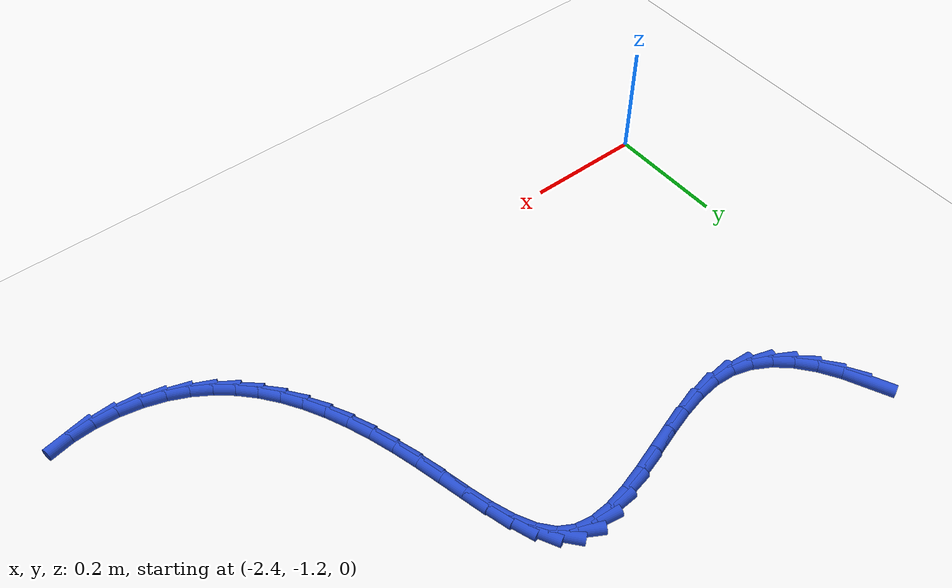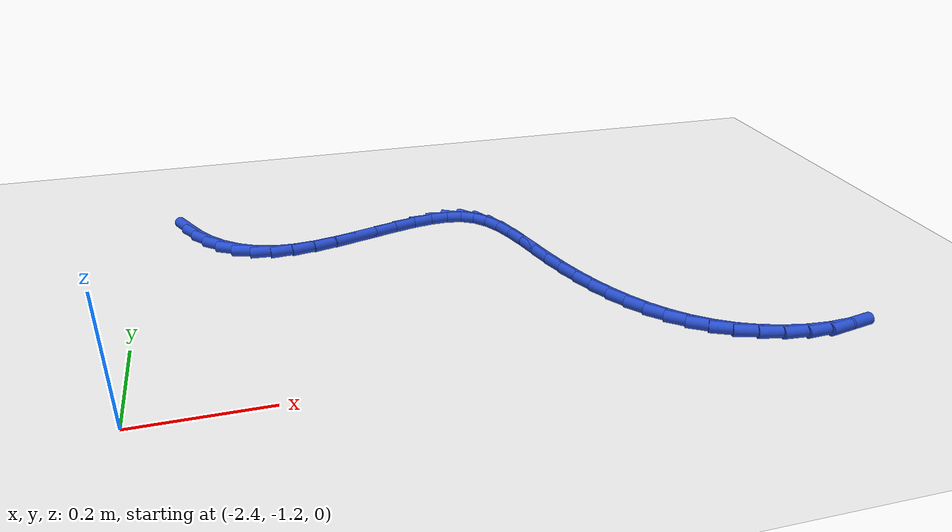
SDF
<sdf version="1.6">
 <world name="default">
  <model name="ground_plane">
   <static>1</static>
   <link name="link">
    <collision name="collision">
     <geometry><plane><normal>0 0 1</normal><size>100 100</size></plane></geometry>
     <surface><friction><ode><mu>100</mu><mu2>50</mu2></ode></friction></surface>
    </collision>
    <visual name="visual">
     <cast_shadows>0</cast_shadows>
     <geometry><plane><normal>0 0 1</normal><size>100 100</size></plane></geometry>
     <material>
      <script><uri>file://media/materials/scripts/gazebo.material</uri><name>Gazebo/WhiteGlow</name></script>
     </material>
    </visual>
   </link>
  </model>
  <model name="line">
   <link name="link_135">
    <pose>-2.317628818349024 -0.5887638545938548 0.01 0 1.57 -1.1273412968581804</pose>
    <collision name="collision">
     <geometry><cylinder><radius>0.01</radius><length>0.08</length></cylinder></geometry>
    </collision>
    <visual name="visual">
     <material>
      <script><name>Gazebo/Blue</name><uri>file://media/materials/scripts/gazebo.material</uri></script>
     </material>
     <geometry><cylinder><radius>0.01</radius><length>0.08</length></cylinder></geometry>
    </visual>
   </link>
   <link name="link_136">
    <pose>-2.3008463630789313 -0.6240947291702771 0.01 0 1.57 -1.0158100747810805</pose>
    <collision name="collision">
     <geometry><cylinder><radius>0.01</radius><length>0.08</length></cylinder></geometry>
    </collision>
    <visual name="visual">
     <material>
      <script><name>Gazebo/Blue</name><uri>file://media/materials/scripts/gazebo.material</uri></script>
     </material>
     <geometry><cylinder><radius>0.01</radius><length>0.08</length></cylinder></geometry>
    </visual>
   </link>
   <link name="link_137">
    <pose>-2.2811849344449042 -0.6558073817940376 0.01 0 1.57 -0.8809743168421253</pose>
    <collision name="collision">
     <geometry><cylinder><radius>0.01</radius><length>0.08</length></cylinder></geometry>
    </collision>
    <visual name="visual">
     <material>
      <script><name>Gazebo/Blue</name><uri>file://media/materials/scripts/gazebo.material</uri></script>
     </material>
     <geometry><cylinder><radius>0.01</radius><length>0.08</length></cylinder></geometry>
    </visual>
   </link>
   <link name="link_138">
    <pose>-2.258617061796877 -0.6831611549541381 0.01 0 1.57 -0.717499734295027</pose>
    <collision name="collision">
     <geometry><cylinder><radius>0.01</radius><length>0.08</length></cylinder></geometry>
    </collision>
    <visual name="visual">
     <material>
      <script><name>Gazebo/Blue</name><uri>file://media/materials/scripts/gazebo.material</uri></script>
     </material>
     <geometry><cylinder><radius>0.01</radius><length>0.08</length></cylinder></geometry>
    </visual>
   </link>
   <link name="link_139">
    <pose>-2.2331152744847835 -0.7054153911395804 0.01 0 1.57 -0.5230932730868396</pose>
    <collision name="collision">
     <geometry><cylinder><radius>0.01</radius><length>0.08</length></cylinder></geometry>
    </collision>
    <visual name="visual">
     <material>
      <script><name>Gazebo/Blue</name><uri>file://media/materials/scripts/gazebo.material</uri></script>
     </material>
     <geometry><cylinder><radius>0.01</radius><length>0.08</length></cylinder></geometry>
    </visual>
   </link>
   <link name="link_140">
    <pose>-2.2046521018585534 -0.7218294328393651 0.01 0 1.57 -0.3030132038240705</pose>
    <collision name="collision">
     <geometry><cylinder><radius>0.01</radius><length>0.08</length></cylinder></geometry>
    </collision>
    <visual name="visual">
     <material>
      <script><name>Gazebo/Blue</name><uri>file://media/materials/scripts/gazebo.material</uri></script>
     </material>
     <geometry><cylinder><radius>0.01</radius><length>0.08</length></cylinder></geometry>
    </visual>
   </link>
   <link name="link_141">
    <pose>-2.1732000732681236 -0.7316626225424931 0.01 0 1.57 -0.0782711757957893</pose>
    <collision name="collision">
     <geometry><cylinder><radius>0.01</radius><length>0.08</length></cylinder></geometry>
    </collision>
    <visual name="visual">
     <material>
      <script><name>Gazebo/Blue</name><uri>file://media/materials/scripts/gazebo.material</uri></script>
     </material>
     <geometry><cylinder><radius>0.01</radius><length>0.08</length></cylinder></geometry>
    </visual>
   </link>
   <link name="link_142">
    <pose>-2.13879540124824 -0.734361029412185 0.01 0 1.57 0.09517036867485135</pose>
    <collision name="collision">
     <geometry><cylinder><radius>0.01</radius><length>0.08</length></cylinder></geometry>
    </collision>
    <visual name="visual">
     <material>
      <script><name>Gazebo/Blue</name><uri>file://media/materials/scripts/gazebo.material</uri></script>
     </material>
     <geometry><cylinder><radius>0.01</radius><length>0.08</length></cylinder></geometry>
    </visual>
   </link>
   <link name="link_143">
    <pose>-2.1019775948242403 -0.7308464477988676 0.01 0 1.57 0.20773801691130686</pose>
    <collision name="collision">
     <geometry><cylinder><radius>0.01</radius><length>0.08</length></cylinder></geometry>
    </collision>
    <visual name="visual">
     <material>
      <script><name>Gazebo/Blue</name><uri>file://media/materials/scripts/gazebo.material</uri></script>
     </material>
     <geometry><cylinder><radius>0.01</radius><length>0.08</length></cylinder></geometry>
    </visual>
   </link>
   <link name="link_144">
    <pose>-2.0635251779078283 -0.7227414921352215 0.01 0 1.57 0.2744824489109255</pose>
    <collision name="collision">
     <geometry><cylinder><radius>0.01</radius><length>0.08</length></cylinder></geometry>
    </collision>
    <visual name="visual">
     <material>
      <script><name>Gazebo/Blue</name><uri>file://media/materials/scripts/gazebo.material</uri></script>
     </material>
     <geometry><cylinder><radius>0.01</radius><length>0.08</length></cylinder></geometry>
    </visual>
   </link>
   <link name="link_145">
    <pose>-2.0242181216515545 -0.711673020336253 0.01 0 1.57 0.3051582101051032</pose>
    <collision name="collision">
     <geometry><cylinder><radius>0.01</radius><length>0.08</length></cylinder></geometry>
    </collision>
    <visual name="visual">
     <material>
      <script><name>Gazebo/Blue</name><uri>file://media/materials/scripts/gazebo.material</uri></script>
     </material>
     <geometry><cylinder><radius>0.01</radius><length>0.08</length></cylinder></geometry>
    </visual>
   </link>
   <link name="link_146">
    <pose>-1.984836397207964 -0.6992678903169681 0.01 0 1.57 0.30355719614084503</pose>
    <collision name="collision">
     <geometry><cylinder><radius>0.01</radius><length>0.08</length></cylinder></geometry>
    </collision>
    <visual name="visual">
     <material>
      <script><name>Gazebo/Blue</name><uri>file://media/materials/scripts/gazebo.material</uri></script>
     </material>
     <geometry><cylinder><radius>0.01</radius><length>0.08</length></cylinder></geometry>
    </visual>
   </link>
   <link name="link_147">
    <pose>-1.9461599757296049 -0.6871529599923727 0.01 0 1.57 0.26762380844788514</pose>
    <collision name="collision">
     <geometry><cylinder><radius>0.01</radius><length>0.08</length></cylinder></geometry>
    </collision>
    <visual name="visual">
     <material>
      <script><name>Gazebo/Blue</name><uri>file://media/materials/scripts/gazebo.material</uri></script>
     </material>
     <geometry><cylinder><radius>0.01</radius><length>0.08</length></cylinder></geometry>
    </visual>
   </link>
   <link name="link_148">
    <pose>-1.9089688283690234 -0.6769550872774719 0.01 0 1.57 0.18826030834922972</pose>
    <collision name="collision">
     <geometry><cylinder><radius>0.01</radius><length>0.08</length></cylinder></geometry>
    </collision>
    <visual name="visual">
     <material>
      <script><name>Gazebo/Blue</name><uri>file://media/materials/scripts/gazebo.material</uri></script>
     </material>
     <geometry><cylinder><radius>0.01</radius><length>0.08</length></cylinder></geometry>
    </visual>
   </link>
   <link name="link_149">
    <pose>-1.8740429262787686 -0.6703011300872727 0.01 0 1.57 0.04648943542082895</pose>
    <collision name="collision">
     <geometry><cylinder><radius>0.01</radius><length>0.08</length></cylinder></geometry>
    </collision>
    <visual name="visual">
     <material>
      <script><name>Gazebo/Blue</name><uri>file://media/materials/scripts/gazebo.material</uri></script>
     </material>
     <geometry><cylinder><radius>0.01</radius><length>0.08</length></cylinder></geometry>
    </visual>
   </link>
   <link name="link_150">
    <pose>-1.8421622406113878 -0.6688179463367807 0.01 0 1.57 -0.18720812243132404</pose>
    <collision name="collision">
     <geometry><cylinder><radius>0.01</radius><length>0.08</length></cylinder></geometry>
    </collision>
    <visual name="visual">
     <material>
      <script><name>Gazebo/Blue</name><uri>file://media/materials/scripts/gazebo.material</uri></script>
     </material>
     <geometry><cylinder><radius>0.01</radius><length>0.08</length></cylinder></geometry>
    </visual>
   </link>
   <link name="link_151">
    <pose>-1.814106742519427 -0.6741323939410013 0.01 0 1.57 -0.5283605890958168</pose>
    <collision name="collision">
     <geometry><cylinder><radius>0.01</radius><length>0.08</length></cylinder></geometry>
    </collision>
    <visual name="visual">
     <material>
      <script><name>Gazebo/Blue</name><uri>file://media/materials/scripts/gazebo.material</uri></script>
     </material>
     <geometry><cylinder><radius>0.01</radius><length>0.08</length></cylinder></geometry>
    </visual>
   </link>
   <link name="link_152">
    <pose>-1.7906357787162408 -0.6878327922977431 0.01 0 1.57 -0.8680273422751692</pose>
    <collision name="collision">
     <geometry><cylinder><radius>0.01</radius><length>0.08</length></cylinder></geometry>
    </collision>
    <visual name="visual">
     <material>
      <script><name>Gazebo/Blue</name><uri>file://media/materials/scripts/gazebo.material</uri></script>
     </material>
     <geometry><cylinder><radius>0.01</radius><length>0.08</length></cylinder></geometry>
    </visual>
   </link>
   <link name="link_153">
    <pose>-1.7717629256799599 -0.7101139257483745 0.01 0 1.57 -1.0923444072316981</pose>
    <collision name="collision">
     <geometry><cylinder><radius>0.01</radius><length>0.08</length></cylinder></geometry>
    </collision>
    <visual name="visual">
     <material>
      <script><name>Gazebo/Blue</name><uri>file://media/materials/scripts/gazebo.material</uri></script>
     </material>
     <geometry><cylinder><radius>0.01</radius><length>0.08</length></cylinder></geometry>
    </visual>
   </link>
   <link name="link_154">
    <pose>-1.7565641870269302 -0.7394186440716308 0.01 0 1.57 -1.2244562068442855</pose>
    <collision name="collision">
     <geometry><cylinder><radius>0.01</radius><length>0.08</length></cylinder></geometry>
    </collision>
    <visual name="visual">
     <material>
      <script><name>Gazebo/Blue</name><uri>file://media/materials/scripts/gazebo.material</uri></script>
     </material>
     <geometry><cylinder><radius>0.01</radius><length>0.08</length></cylinder></geometry>
    </visual>
   </link>
   <link name="link_155">
    <pose>-1.744055950374949 -0.7740783994870906 0.01 0 1.57 -1.2962310008067632</pose>
    <collision name="collision">
     <geometry><cylinder><radius>0.01</radius><length>0.08</length></cylinder></geometry>
    </collision>
    <visual name="visual">
     <material>
      <script><name>Gazebo/Blue</name><uri>file://media/materials/scripts/gazebo.material</uri></script>
     </material>
     <geometry><cylinder><radius>0.01</radius><length>0.08</length></cylinder></geometry>
    </visual>
   </link>
   <link name="link_156">
    <pose>-1.733254603341817 -0.8124246442143324 0.01 0 1.57 -1.326120267376389</pose>
    <collision name="collision">
     <geometry><cylinder><radius>0.01</radius><length>0.08</length></cylinder></geometry>
    </collision>
    <visual name="visual">
     <material>
      <script><name>Gazebo/Blue</name><uri>file://media/materials/scripts/gazebo.material</uri></script>
     </material>
     <geometry><cylinder><radius>0.01</radius><length>0.08</length></cylinder></geometry>
    </visual>
   </link>
   <link name="link_157">
    <pose>-1.7231765335453324 -0.8527888304729353 0.01 0 1.57 -1.3221331426186123</pose>
    <collision name="collision">
     <geometry><cylinder><radius>0.01</radius><length>0.08</length></cylinder></geometry>
    </collision>
    <visual name="visual">
     <material>
      <script><name>Gazebo/Blue</name><uri>file://media/materials/scripts/gazebo.material</uri></script>
     </material>
     <geometry><cylinder><radius>0.01</radius><length>0.08</length></cylinder></geometry>
    </visual>
   </link>
   <link name="link_158">
    <pose>-1.7128384593941763 -0.8935029847048865 0.01 0 1.57 -1.291840503960057</pose>
    <collision name="collision">
     <geometry><cylinder><radius>0.01</radius><length>0.08</length></cylinder></geometry>
    </collision>
    <visual name="visual">
     <material>
      <script><name>Gazebo/Blue</name><uri>file://media/materials/scripts/gazebo.material</uri></script>
     </material>
     <geometry><cylinder><radius>0.01</radius><length>0.08</length></cylinder></geometry>
    </visual>
   </link>
   <link name="link_159">
    <pose>-1.701455703796848 -0.9332438924171547 0.01 0 1.57 -1.2516978057423853</pose>
    <collision name="collision">
     <geometry><cylinder><radius>0.01</radius><length>0.08</length></cylinder></geometry>
    </collision>
    <visual name="visual">
     <material>
      <script><name>Gazebo/Blue</name><uri>file://media/materials/scripts/gazebo.material</uri></script>
     </material>
     <geometry><cylinder><radius>0.01</radius><length>0.08</length></cylinder></geometry>
    </visual>
   </link>
   <link name="link_160">
    <pose>-1.6887779772968954 -0.9716159866854305 0.01 0 1.57 -1.2037472483334966</pose>
    <collision name="collision">
     <geometry><cylinder><radius>0.01</radius><length>0.08</length></cylinder></geometry>
    </collision>
    <visual name="visual">
     <material>
      <script><name>Gazebo/Blue</name><uri>file://media/materials/scripts/gazebo.material</uri></script>
     </material>
     <geometry><cylinder><radius>0.01</radius><length>0.08</length></cylinder></geometry>
    </visual>
   </link>
   <link name="link_161">
    <pose>-1.6746439544049785 -1.008378133813989 0.01 0 1.57 -1.146950362193222</pose>
    <collision name="collision">
     <geometry><cylinder><radius>0.01</radius><length>0.08</length></cylinder></geometry>
    </collision>
    <visual name="visual">
     <material>
      <script><name>Gazebo/Blue</name><uri>file://media/materials/scripts/gazebo.material</uri></script>
     </material>
     <geometry><cylinder><radius>0.01</radius><length>0.08</length></cylinder></geometry>
    </visual>
   </link>
   <link name="link_162">
    <pose>-1.658892309631758 -1.0432892001071061 0.01 0 1.57 -1.0801938617970697</pose>
    <collision name="collision">
     <geometry><cylinder><radius>0.01</radius><length>0.08</length></cylinder></geometry>
    </collision>
    <visual name="visual">
     <material>
      <script><name>Gazebo/Blue</name><uri>file://media/materials/scripts/gazebo.material</uri></script>
     </material>
     <geometry><cylinder><radius>0.01</radius><length>0.08</length></cylinder></geometry>
    </visual>
   </link>
   <link name="link_163">
    <pose>-1.6413617174878956 -1.0761080518690567 0.01 0 1.57 -1.0024111953895765</pose>
    <collision name="collision">
     <geometry><cylinder><radius>0.01</radius><length>0.08</length></cylinder></geometry>
    </collision>
    <visual name="visual">
     <material>
      <script><name>Gazebo/Blue</name><uri>file://media/materials/scripts/gazebo.material</uri></script>
     </material>
     <geometry><cylinder><radius>0.01</radius><length>0.08</length></cylinder></geometry>
    </visual>
   </link>
   <link name="link_164">
    <pose>-1.6218908524840514 -1.1065935554041162 0.01 0 1.57 -0.9127988011893543</pose>
    <collision name="collision">
     <geometry><cylinder><radius>0.01</radius><length>0.08</length></cylinder></geometry>
    </collision>
    <visual name="visual">
     <material>
      <script><name>Gazebo/Blue</name><uri>file://media/materials/scripts/gazebo.material</uri></script>
     </material>
     <geometry><cylinder><radius>0.01</radius><length>0.08</length></cylinder></geometry>
    </visual>
   </link>
   <link name="link_165">
    <pose>-1.600318389130886 -1.1345045770165603 0.01 0 1.57 -0.8111435134749304</pose>
    <collision name="collision">
     <geometry><cylinder><radius>0.01</radius><length>0.08</length></cylinder></geometry>
    </collision>
    <visual name="visual">
     <material>
      <script><name>Gazebo/Blue</name><uri>file://media/materials/scripts/gazebo.material</uri></script>
     </material>
     <geometry><cylinder><radius>0.01</radius><length>0.08</length></cylinder></geometry>
    </visual>
   </link>
   <link name="link_166">
    <pose>-1.5764830019390599 -1.159599983010665 0.01 0 1.57 -0.6982256705973012</pose>
    <collision name="collision">
     <geometry><cylinder><radius>0.01</radius><length>0.08</length></cylinder></geometry>
    </collision>
    <visual name="visual">
     <material>
      <script><name>Gazebo/Blue</name><uri>file://media/materials/scripts/gazebo.material</uri></script>
     </material>
     <geometry><cylinder><radius>0.01</radius><length>0.08</length></cylinder></geometry>
    </visual>
   </link>
   <link name="link_167">
    <pose>-1.5502233654192346 -1.1816386396907044 0.01 0 1.57 -0.5761652671756388</pose>
    <collision name="collision">
     <geometry><cylinder><radius>0.01</radius><length>0.08</length></cylinder></geometry>
    </collision>
    <visual name="visual">
     <material>
      <script><name>Gazebo/Blue</name><uri>file://media/materials/scripts/gazebo.material</uri></script>
     </material>
     <geometry><cylinder><radius>0.01</radius><length>0.08</length></cylinder></geometry>
    </visual>
   </link>
   <link name="link_168">
    <pose>-1.5213781540820703 -1.2003794133609549 0.01 0 1.57 -0.4484853825487086</pose>
    <collision name="collision">
     <geometry><cylinder><radius>0.01</radius><length>0.08</length></cylinder></geometry>
    </collision>
    <visual name="visual">
     <material>
      <script><name>Gazebo/Blue</name><uri>file://media/materials/scripts/gazebo.material</uri></script>
     </material>
     <geometry><cylinder><radius>0.01</radius><length>0.08</length></cylinder></geometry>
    </visual>
   </link>
   <link name="link_169">
    <pose>-1.4897860432088643 -1.2155811702755839 0.01 0 1.57 -0.32121271015581015</pose>
    <collision name="collision">
     <geometry><cylinder><radius>0.01</radius><length>0.08</length></cylinder></geometry>
    </collision>
    <visual name="visual">
     <material>
      <script><name>Gazebo/Blue</name><uri>file://media/materials/scripts/gazebo.material</uri></script>
     </material>
     <geometry><cylinder><radius>0.01</radius><length>0.08</length></cylinder></geometry>
    </visual>
   </link>
   <link name="link_170">
    <pose>-1.4555019517258494 -1.2269887161058484 0.01 0 1.57 -0.1996682806268744</pose>
    <collision name="collision">
     <geometry><cylinder><radius>0.01</radius><length>0.08</length></cylinder></geometry>
    </collision>
    <visual name="visual">
     <material>
      <script><name>Gazebo/Blue</name><uri>file://media/materials/scripts/gazebo.material</uri></script>
     </material>
     <geometry><cylinder><radius>0.01</radius><length>0.08</length></cylinder></geometry>
    </visual>
   </link>
   <link name="link_171">
    <pose>-1.419406455343589 -1.2342931707109943 0.01 0 1.57 -0.07803095077785485</pose>
    <collision name="collision">
     <geometry><cylinder><radius>0.01</radius><length>0.08</length></cylinder></geometry>
    </collision>
    <visual name="visual">
     <material>
      <script><name>Gazebo/Blue</name><uri>file://media/materials/scripts/gazebo.material</uri></script>
     </material>
     <geometry><cylinder><radius>0.01</radius><length>0.08</length></cylinder></geometry>
    </visual>
   </link>
   <link name="link_172">
    <pose>-1.3825771574182686 -1.237172842829056 0.01 0 1.57 0.05112100259094653</pose>
    <collision name="collision">
     <geometry><cylinder><radius>0.01</radius><length>0.08</length></cylinder></geometry>
    </collision>
    <visual name="visual">
     <material>
      <script><name>Gazebo/Blue</name><uri>file://media/materials/scripts/gazebo.material</uri></script>
     </material>
     <geometry><cylinder><radius>0.01</radius><length>0.08</length></cylinder></geometry>
    </visual>
   </link>
   <link name="link_173">
    <pose>-1.3460916613060736 -1.2353060411980668 0.01 0 1.57 0.1952597817310451</pose>
    <collision name="collision">
     <geometry><cylinder><radius>0.01</radius><length>0.08</length></cylinder></geometry>
    </collision>
    <visual name="visual">
     <material>
      <script><name>Gazebo/Blue</name><uri>file://media/materials/scripts/gazebo.material</uri></script>
     </material>
     <geometry><cylinder><radius>0.01</radius><length>0.08</length></cylinder></geometry>
    </visual>
   </link>
  </model>
 </world>
</sdf>
